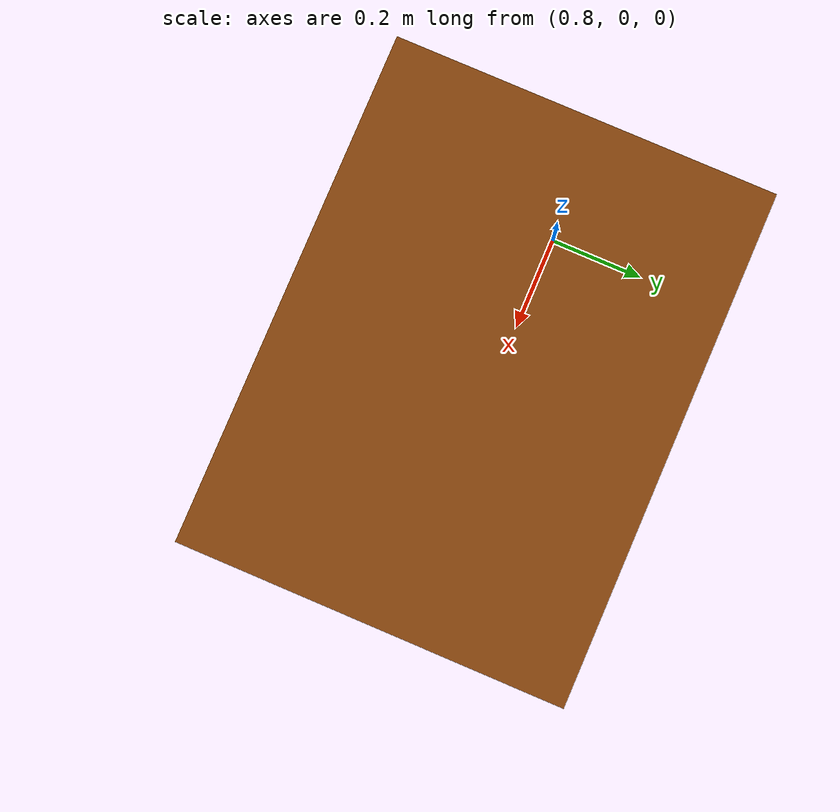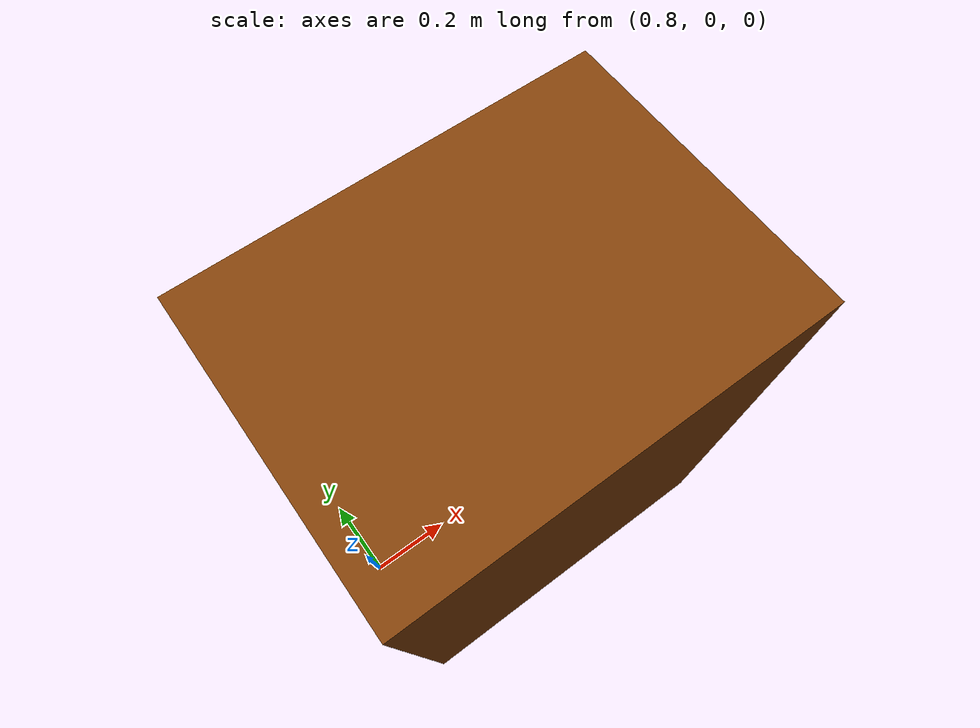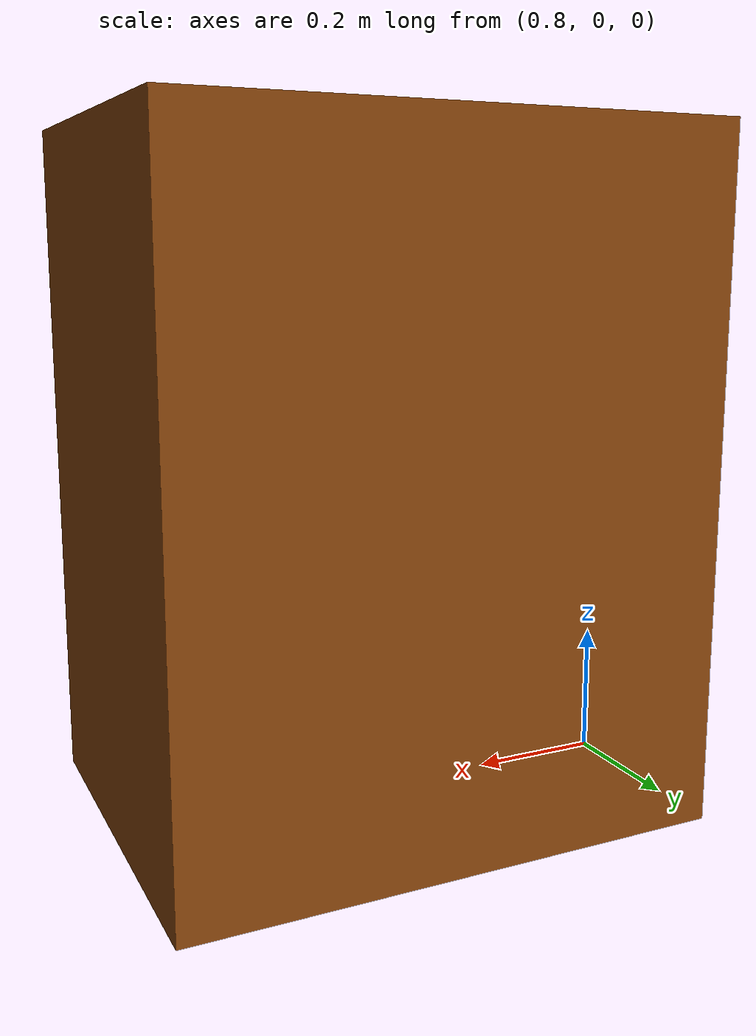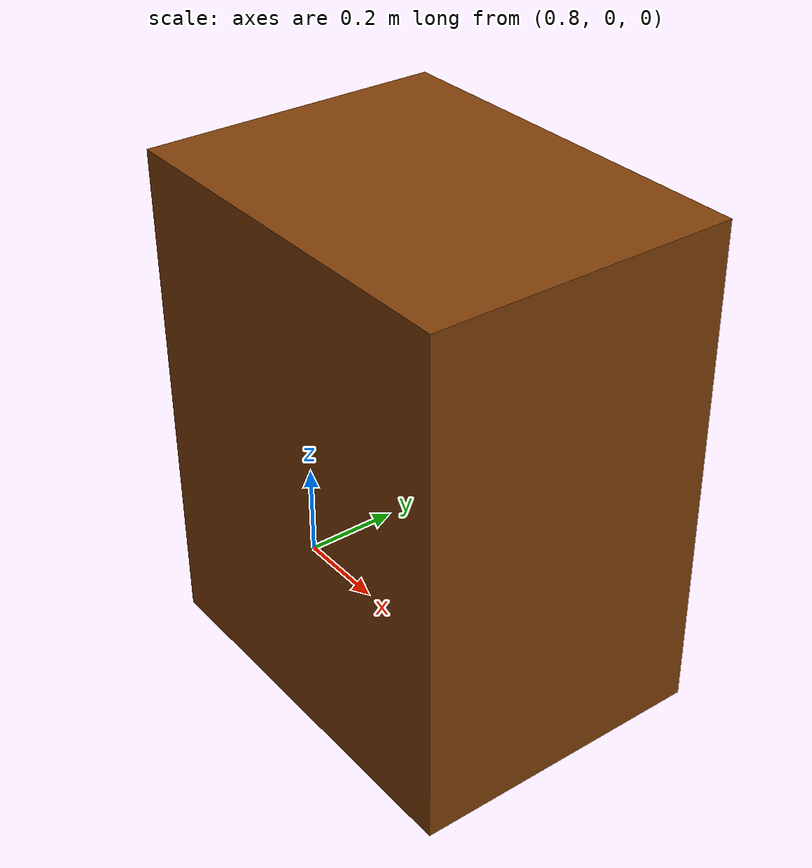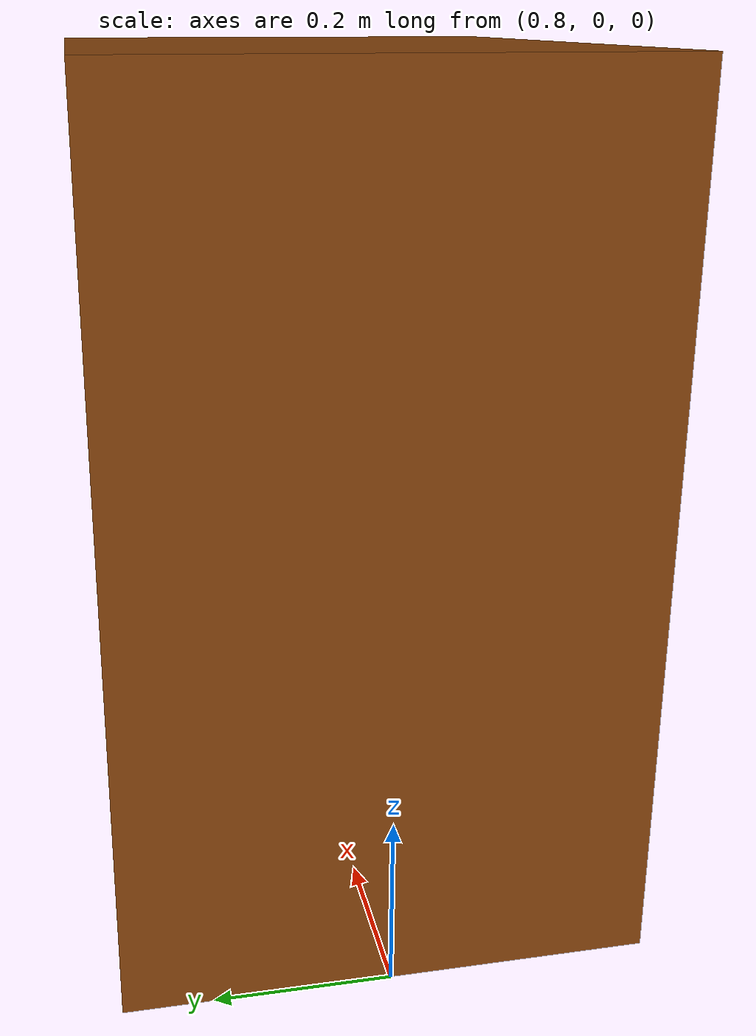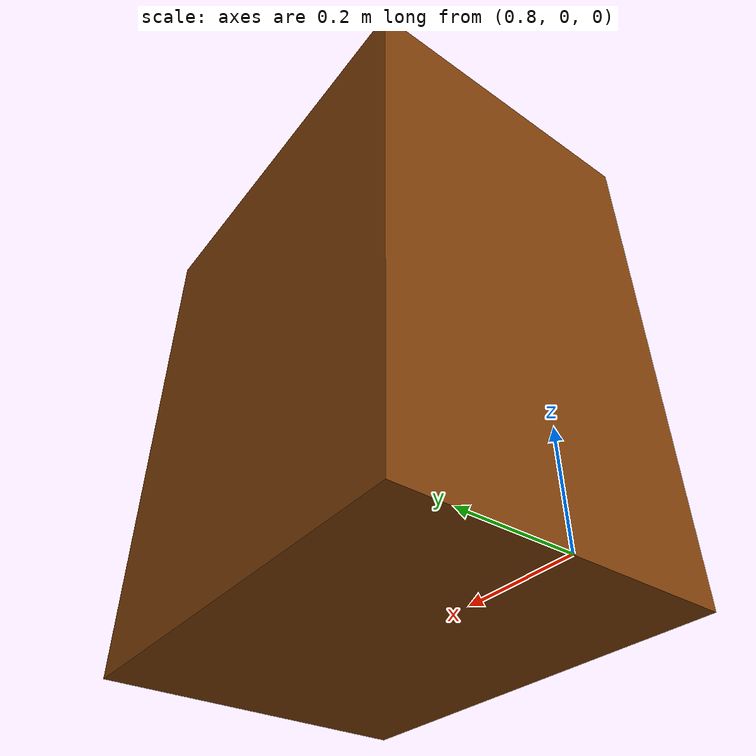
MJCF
<mujoco model="box">
  <worldbody>
    <body name="box" pos="1.2 0 0.5" quat="1 0 0 0">
      <freejoint/>
      <geom name="base" type="box" pos="0 0 0" size=".4 .3 .5" mass="10." material="mat"/>
    </body>
  </worldbody>

  <asset>
    <material name="mat" rgba="0.5 0.25 0.04 1"/>
  </asset>
</mujoco>
